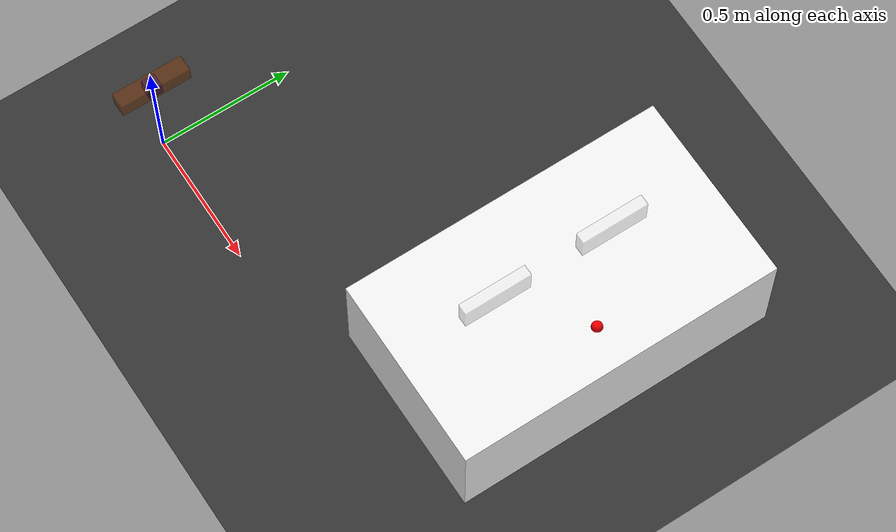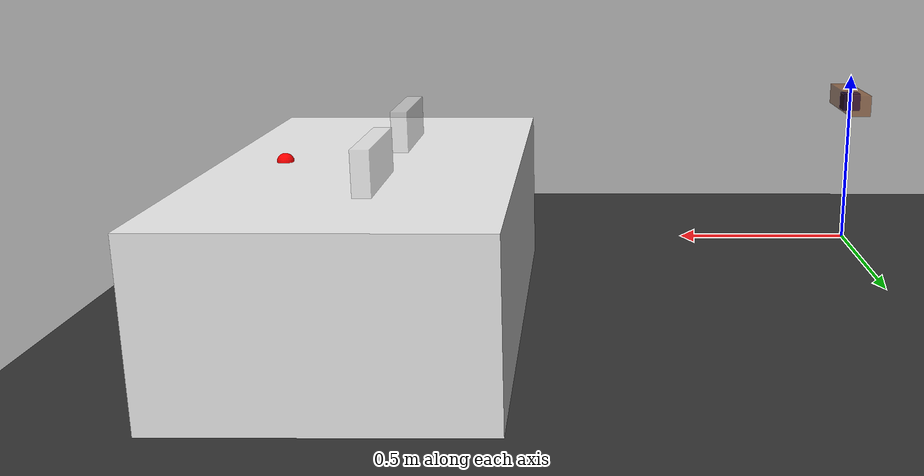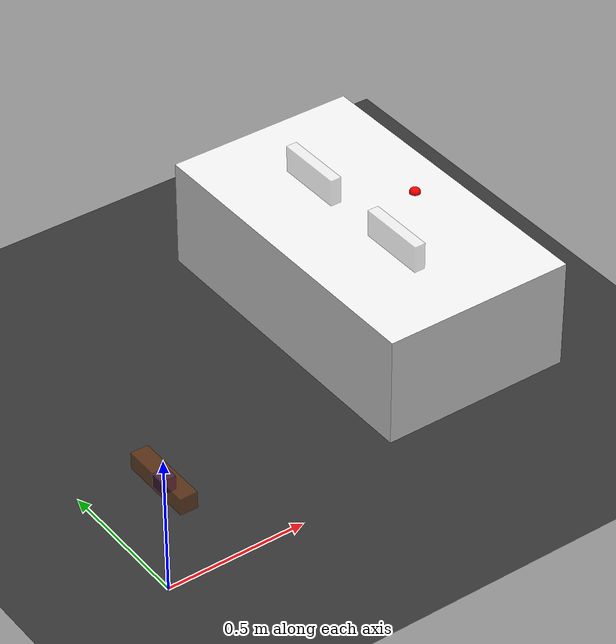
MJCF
<?xml version="1.0" encoding="utf-8"?>
<mujoco>
    <compiler angle="radian" coordinate="local"></compiler>
    <option timestep="0.002">
        <flag warmstart="enable"></flag>
    </option>

    <asset>
        <material name="floor_mat" specular="0" shininess="0.5" reflectance="0" rgba="0.2 0.2 0.2 1"></material>
        <material name="table_mat" specular="0" shininess="0.5" reflectance="0" rgba="0.93 0.93 0.93 1"></material>
        <material name="block_mat" specular="0" shininess="0.5" reflectance="0" rgba="0.1 0.1 0.5 1"></material>
        <material name="stick_mat" specular="0" shininess="0.5" reflectance="0" rgba="0.5 0.2 0.0 0.5"></material>
    </asset>

    <worldbody>
        <geom name="floor0" pos="0.8 0.75 0" size="1.4 1.4 1" type="plane" condim="3" material="floor_mat"></geom>
        <body name="floor0" pos="0.8 0.75 0">
            <site name="target0" pos="0.7 0.0 0.4" size="0.02 0.02 0.02" rgba="1 0 0 1" type="sphere"></site>
        </body>

        <body pos="0 0 0.425" name="masspoint">
            <geom name="masspoint" size="0.024 0.024 0.024" type="sphere" condim="6" material="stick_mat"
                  mass="10"></geom>
            <joint axis="1 0 0" name="masspoint:slidex" type="slide" damping="0.01"></joint>
            <joint axis="0 1 0" name="masspoint:slidey" type="slide" damping="0.01"></joint>
            <site name="masspoint" pos="0 0 0" size="0.02 0.02 0.02" rgba="1 0 0 1" type="sphere"></site>
        </body>

        <body pos="1.3 0.75 0.2" name="table0">
            <geom size="0.35 0.6 0.2" type="box" mass="2000" material="table_mat"></geom>
        </body>

        <geom name="wall0" pos="1.25 0.975 0.45" size="0.02 0.125 0.05" type="box" condim="3" mass="100"
              material="table_mat" rgba="0.93 0.93 0.93 0.5"></geom>
        <geom name="wall1" pos="1.25 0.525 0.45" size="0.02 0.125 0.05" type="box" condim="3" mass="100"
              material="table_mat" rgba="0.93 0.93 0.93 0.5"></geom>

        <body name="object0" pos="0 0 0.425">
            <joint axis="1 0 0" name="object0:slidex" type="slide" damping="0.01"></joint>
            <joint axis="0 1 0" name="object0:slidey" type="slide" damping="0.01"></joint>
            <geom size="0.025 0.025 0.025" type="box" condim="3" name="object0" material="block_mat" mass="2"></geom>
            <site name="object0" pos="0 0 0" size="0.02 0.02 0.02" rgba="1 0 0 1" type="sphere"></site>
        </body>

        <body name="object1" pos="0 0 0.43">
            <joint name="object1:joint" type="free" damping="0.01"></joint>
            <geom size="0.03 0.13 0.03" type="box" condim="3" name="object1" material="stick_mat" mass="50"
                  friction="1 0.005 0.0001"></geom>
            <site name="object1" pos="0 0 0" size="0.02 0.02 0.02" rgba="0.5 0.2 0 0" type="sphere"></site>
        </body>

        <light directional="true" ambient="0.2 0.2 0.2" diffuse="0.8 0.8 0.8" specular="0.3 0.3 0.3" castshadow="false"
               pos="0 0 4" dir="0 0 -1" name="light0"></light>
    </worldbody>

    <actuator>
        <motor gear="20000" joint="masspoint:slidex"></motor>
        <motor gear="20000" joint="masspoint:slidey"></motor>
    </actuator>
</mujoco>
